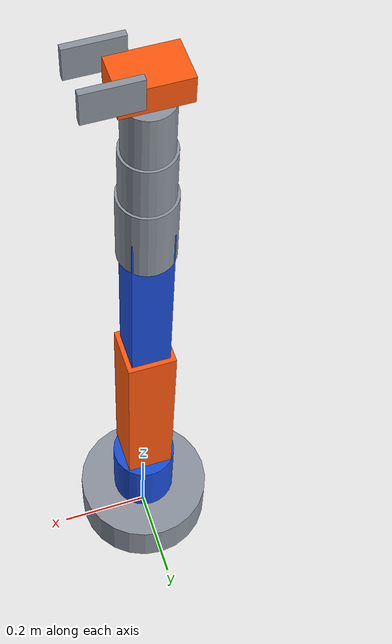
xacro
<?xml version="1.0"?>
<robot xmlns:xacro="http://www.ros.org/wiki/xacro" name="sorting_arm">

  <material name="blue">
    <color rgba="0.1 0.3 0.85 1"/>
  </material>

  <material name="orange">
    <color rgba="1 0.35 0.05 1"/>
  </material>

  <material name="gray">
    <color rgba="0.55 0.58 0.62 1"/>
  </material>

  <!-- ==================== BASE ==================== -->

  <link name="base_link">
    <visual>
      <origin xyz="0 0 0.06"/>
      <geometry>
        <cylinder radius="0.15" length="0.12"/>
      </geometry>
      <material name="gray"/>
    </visual>

    <collision>
      <origin xyz="0 0 0.06"/>
      <geometry>
        <cylinder radius="0.15" length="0.12"/>
      </geometry>
    </collision>

    <inertial>
      <origin xyz="0 0 0.06"/>
      <mass value="5"/>
      <inertia ixx="0.05" ixy="0" ixz="0"
               iyy="0.05" iyz="0" izz="0.05"/>
    </inertial>
  </link>

  <!-- ==================== LINK 1 ==================== -->

  <link name="link1">
    <visual>
      <geometry>
        <cylinder radius="0.07" length="0.22"/>
      </geometry>
      <material name="blue"/>
    </visual>

    <collision>
      <geometry>
        <cylinder radius="0.07" length="0.22"/>
      </geometry>
    </collision>

    <inertial>
      <mass value="2"/>
      <inertia ixx="0.02" ixy="0" ixz="0"
               iyy="0.02" iyz="0" izz="0.02"/>
    </inertial>
  </link>

  <joint name="joint1" type="revolute">
    <parent link="base_link"/>
    <child link="link1"/>
    <origin xyz="0 0 0.17"/>
    <axis xyz="0 0 1"/>
    <limit lower="-3.14" upper="3.14" effort="30" velocity="1.5"/>
  </joint>

  <!-- ==================== LINK 2 ==================== -->

  <link name="link2">
    <visual>
      <origin xyz="0 0 0.22"/>
      <geometry>
        <box size="0.10 0.10 0.44"/>
      </geometry>
      <material name="orange"/>
    </visual>

    <collision>
      <origin xyz="0 0 0.22"/>
      <geometry>
        <box size="0.10 0.10 0.44"/>
      </geometry>
    </collision>

    <inertial>
      <origin xyz="0 0 0.22"/>
      <mass value="2"/>
      <inertia ixx="0.04" ixy="0" ixz="0"
               iyy="0.04" iyz="0" izz="0.01"/>
    </inertial>
  </link>

  <joint name="joint2" type="revolute">
    <parent link="link1"/>
    <child link="link2"/>
    <origin xyz="0 0 0.12"/>
    <axis xyz="0 1 0"/>
    <limit lower="-2.2" upper="2.2" effort="30" velocity="1.5"/>
  </joint>

  <!-- ==================== LINK 3 ==================== -->

  <link name="link3">
    <visual>
      <origin xyz="0 0 0.20"/>
      <geometry>
        <box size="0.08 0.08 0.40"/>
      </geometry>
      <material name="blue"/>
    </visual>

    <collision>
      <origin xyz="0 0 0.20"/>
      <geometry>
        <box size="0.08 0.08 0.40"/>
      </geometry>
    </collision>

    <inertial>
      <origin xyz="0 0 0.20"/>
      <mass value="1.5"/>
      <inertia ixx="0.03" ixy="0" ixz="0"
               iyy="0.03" iyz="0" izz="0.008"/>
    </inertial>
  </link>

  <joint name="joint3" type="revolute">
    <parent link="link2"/>
    <child link="link3"/>
    <origin xyz="0 0 0.44"/>
    <axis xyz="0 1 0"/>
    <limit lower="-2.5" upper="2.5" effort="25" velocity="1.5"/>
  </joint>

  <!-- ==================== LINK 4 ==================== -->

  <link name="link4">
    <visual>
      <geometry>
        <cylinder radius="0.055" length="0.16"/>
      </geometry>
      <material name="gray"/>
    </visual>

    <collision>
      <geometry>
        <cylinder radius="0.055" length="0.16"/>
      </geometry>
    </collision>

    <inertial>
      <mass value="0.8"/>
      <inertia ixx="0.01" ixy="0" ixz="0"
               iyy="0.01" iyz="0" izz="0.01"/>
    </inertial>
  </link>

  <joint name="joint4" type="revolute">
    <parent link="link3"/>
    <child link="link4"/>
    <origin xyz="0 0 0.40"/>
    <axis xyz="1 0 0"/>
    <limit lower="-3.14" upper="3.14" effort="15" velocity="2"/>
  </joint>

  <!-- ==================== LINK 5 ==================== -->

  <link name="link5">
    <visual>
      <geometry>
        <cylinder radius="0.05" length="0.14"/>
      </geometry>
      <material name="gray"/>
    </visual>

    <collision>
      <geometry>
        <cylinder radius="0.05" length="0.14"/>
      </geometry>
    </collision>

    <inertial>
      <mass value="0.6"/>
      <inertia ixx="0.008" ixy="0" ixz="0"
               iyy="0.008" iyz="0" izz="0.008"/>
    </inertial>
  </link>

  <joint name="joint5" type="revolute">
    <parent link="link4"/>
    <child link="link5"/>
    <origin xyz="0 0 0.12"/>
    <axis xyz="0 1 0"/>
    <limit lower="-2.2" upper="2.2" effort="12" velocity="2"/>
  </joint>

  <!-- ==================== LINK 6 ==================== -->

  <link name="link6">
    <visual>
      <geometry>
        <cylinder radius="0.045" length="0.12"/>
      </geometry>
      <material name="gray"/>
    </visual>

    <collision>
      <geometry>
        <cylinder radius="0.045" length="0.12"/>
      </geometry>
    </collision>

    <inertial>
      <mass value="0.4"/>
      <inertia ixx="0.005" ixy="0" ixz="0"
               iyy="0.005" iyz="0" izz="0.005"/>
    </inertial>
  </link>

  <joint name="joint6" type="revolute">
    <parent link="link5"/>
    <child link="link6"/>
    <origin xyz="0 0 0.12"/>
    <axis xyz="1 0 0"/>
    <limit lower="-3.14" upper="3.14" effort="10" velocity="2"/>
  </joint>

  <!-- ==================== TOOL ==================== -->

  <link name="tool_link">
    <visual>
      <geometry>
        <box size="0.12 0.08 0.05"/>
      </geometry>
      <material name="orange"/>
    </visual>

    <inertial>
      <mass value="0.2"/>
      <inertia ixx="0.001" ixy="0" ixz="0"
               iyy="0.001" iyz="0" izz="0.001"/>
    </inertial>
  </link>

  <joint name="tool_fixed" type="fixed">
    <parent link="link6"/>
    <child link="tool_link"/>
    <origin xyz="0 0 0.10"/>
  </joint>

  <!-- ==================== GRIPPER ==================== -->

  <link name="gripper_left_finger">
    <visual>
      <origin xyz="0.05 0 0"/>
      <geometry>
        <box size="0.10 0.012 0.06"/>
      </geometry>
      <material name="gray"/>
    </visual>

    <collision>
      <origin xyz="0.05 0 0"/>
      <geometry>
        <box size="0.10 0.012 0.06"/>
      </geometry>
    </collision>

    <inertial>
      <origin xyz="0.05 0 0"/>
      <mass value="0.08"/>
      <inertia ixx="0.0001" ixy="0" ixz="0"
               iyy="0.0001" iyz="0" izz="0.0001"/>
    </inertial>
  </link>

  <joint name="gripper_left_finger_joint" type="prismatic">
    <parent link="tool_link"/>
    <child link="gripper_left_finger"/>
    <origin xyz="0.02 0.045 0.025"/>
    <axis xyz="0 -1 0"/>
    <limit lower="0" upper="0.03" effort="20" velocity="0.05"/>
    <dynamics damping="0.2" friction="0.1"/>
  </joint>

  <link name="gripper_right_finger">
    <visual>
      <origin xyz="0.05 0 0"/>
      <geometry>
        <box size="0.10 0.012 0.06"/>
      </geometry>
      <material name="gray"/>
    </visual>

    <collision>
      <origin xyz="0.05 0 0"/>
      <geometry>
        <box size="0.10 0.012 0.06"/>
      </geometry>
    </collision>

    <inertial>
      <origin xyz="0.05 0 0"/>
      <mass value="0.08"/>
      <inertia ixx="0.0001" ixy="0" ixz="0"
               iyy="0.0001" iyz="0" izz="0.0001"/>
    </inertial>
  </link>

  <joint name="gripper_right_finger_joint" type="prismatic">
    <parent link="tool_link"/>
    <child link="gripper_right_finger"/>
    <origin xyz="0.02 -0.045 0.025"/>
    <axis xyz="0 1 0"/>
    <limit lower="0" upper="0.03" effort="20" velocity="0.05"/>
    <dynamics damping="0.2" friction="0.1"/>
  </joint>

  <!-- ==================== ROS 2 CONTROL ==================== -->

  <ros2_control name="GazeboSimSystem" type="system">

    <hardware>
      <plugin>gz_ros2_control/GazeboSimSystem</plugin>
    </hardware>

    <joint name="joint1">
      <command_interface name="position"/>
      <state_interface name="position"/>
      <state_interface name="velocity"/>
    </joint>

    <joint name="joint2">
      <command_interface name="position"/>
      <state_interface name="position"/>
      <state_interface name="velocity"/>
    </joint>

    <joint name="joint3">
      <command_interface name="position"/>
      <state_interface name="position"/>
      <state_interface name="velocity"/>
    </joint>

    <joint name="joint4">
      <command_interface name="position"/>
      <state_interface name="position"/>
      <state_interface name="velocity"/>
    </joint>

    <joint name="joint5">
      <command_interface name="position"/>
      <state_interface name="position"/>
      <state_interface name="velocity"/>
    </joint>

    <joint name="joint6">
      <command_interface name="position"/>
      <state_interface name="position"/>
      <state_interface name="velocity"/>
    </joint>

    <joint name="gripper_left_finger_joint">
      <command_interface name="position"/>
      <state_interface name="position"/>
      <state_interface name="velocity"/>
    </joint>

    <joint name="gripper_right_finger_joint">
      <command_interface name="position"/>
      <state_interface name="position"/>
      <state_interface name="velocity"/>
    </joint>

  </ros2_control>

  <!-- ==================== GAZEBO ROS 2 CONTROL ==================== -->

  <gazebo>
    <plugin filename="libgz_ros2_control-system.so"
            name="gz_ros2_control::GazeboSimROS2ControlPlugin">

      <parameters>
        $(env HOME)/robotics_ws/.ros2_control_controllers.yaml
      </parameters>

    </plugin>
  </gazebo>

  <!-- Anchor the robot base to the Gazebo world -->
  <link name="world"/>

  <joint name="world_fixed_joint" type="fixed">
    <parent link="world"/>
    <child link="base_link"/>
    <origin xyz="0 0 0" rpy="0 0 0"/>
  </joint>
</robot>
